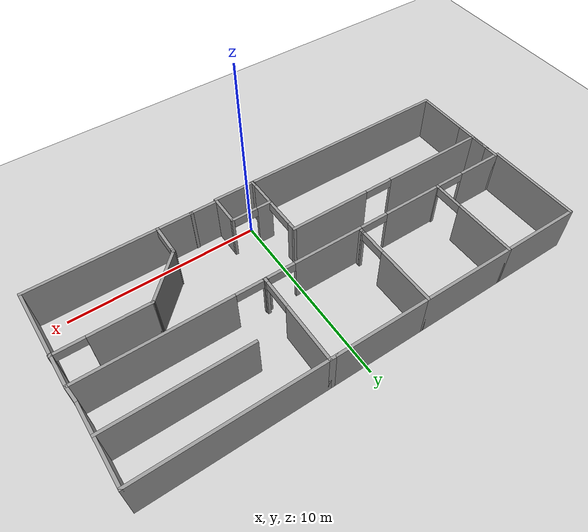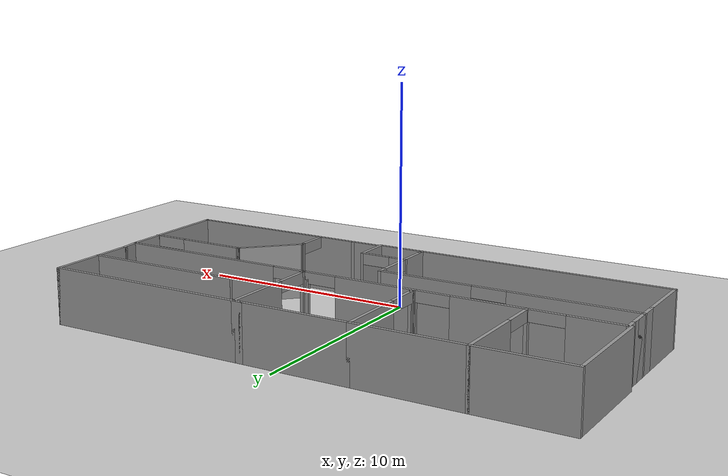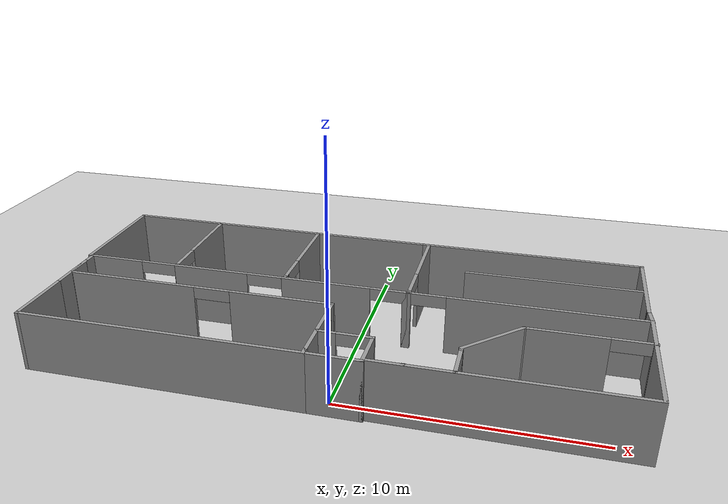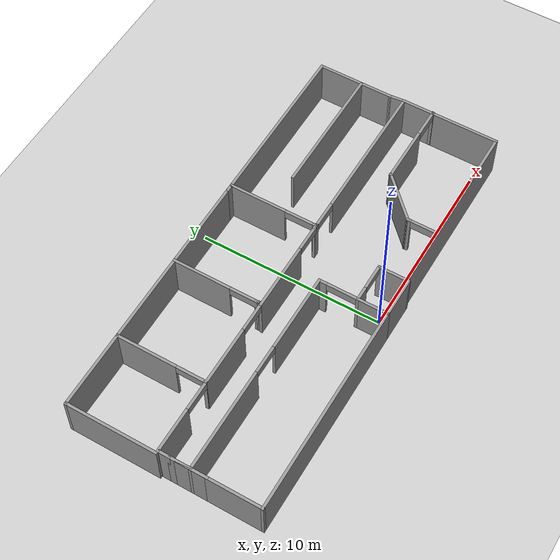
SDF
<sdf version="1.7">
 <world name="default">
  <light name="sun" type="directional">
   <pose>0 0 10 0 -0 0</pose>
   <diffuse>0.8 0.8 0.8 1</diffuse>
   <specular>0.2 0.2 0.2 1</specular>
   <attenuation>
    <range>1000</range>
    <constant>0.9</constant>
    <linear>0.01</linear>
    <quadratic>0.001</quadratic>
   </attenuation>
   <direction>-0.5 0.1 -0.9</direction>
   <spot><inner_angle>0</inner_angle><outer_angle>0</outer_angle><falloff>0</falloff></spot>
  </light>
  <model name="ground_plane">
   <static>1</static>
   <link name="link">
    <collision name="collision">
     <geometry><plane><normal>0 0 1</normal><size>100 100</size></plane></geometry>
     <surface><friction><ode><mu>100</mu><mu2>50</mu2></ode></friction></surface>
    </collision>
    <visual name="visual">
     <cast_shadows>0</cast_shadows>
     <geometry><plane><normal>0 0 1</normal><size>100 100</size></plane></geometry>
     <material>
      <script><uri>file://media/materials/scripts/gazebo.material</uri><name>Gazebo/Grey</name></script>
     </material>
    </visual>
   </link>
  </model>
  <gravity>0 0 -9.8</gravity>
  <magnetic_field>6e-06 2.3e-05 -4.2e-05</magnetic_field>
  <atmosphere type="adiabatic"/>
  <physics type="ode">
   <max_step_size>0.001</max_step_size>
   <real_time_factor>1</real_time_factor>
   <real_time_update_rate>1000</real_time_update_rate>
  </physics>
  <scene><ambient>0.4 0.4 0.4 1</ambient><background>0.7 0.7 0.7 1</background><shadows>1</shadows></scene>
  <audio><device>default</device></audio>
  <spherical_coordinates>
   <surface_model>EARTH_WGS84</surface_model>
   <latitude_deg>0</latitude_deg>
   <longitude_deg>0</longitude_deg>
   <elevation>0</elevation>
   <heading_deg>0</heading_deg>
  </spherical_coordinates>
  <model name="factory2">
   <pose>-0.500335 4.41886 0 0 -0 0</pose>
   <link name="Wall_11">
    <collision name="Wall_11_Collision">
     <geometry><box><size>0.37 0.15 2.5</size></box></geometry>
     <pose>0 0 1.25 0 -0 0</pose>
    </collision>
    <visual name="Wall_11_Visual">
     <pose>0 0 1.25 0 -0 0</pose>
     <geometry><box><size>0.37 0.15 2.5</size></box></geometry>
     <material>
      <script><uri>file://media/materials/scripts/gazebo.material</uri><name>Gazebo/Grey</name></script>
      <ambient>1 1 1 1</ambient>
     </material>
     <meta><layer>0</layer></meta>
    </visual>
    <pose>-0.202627 -5.025 0 0 -0 -1.5708</pose>
   </link>
   <link name="Wall_12">
    <collision name="Wall_12_Collision">
     <geometry><box><size>2.25 0.15 2.5</size></box></geometry>
     <pose>0 0 1.25 0 -0 0</pose>
    </collision>
    <visual name="Wall_12_Visual">
     <pose>0 0 1.25 0 -0 0</pose>
     <geometry><box><size>2.25 0.15 2.5</size></box></geometry>
     <material>
      <script><uri>file://media/materials/scripts/gazebo.material</uri><name>Gazebo/Grey</name></script>
      <ambient>1 1 1 1</ambient>
     </material>
     <meta><layer>0</layer></meta>
    </visual>
    <pose>0.847373 -5.135 0 0 -0 0</pose>
   </link>
   <link name="Wall_13">
    <collision name="Wall_13_Collision">
     <geometry><box><size>1.75 0.15 2.5</size></box></geometry>
     <pose>0 0 1.25 0 -0 0</pose>
    </collision>
    <visual name="Wall_13_Visual">
     <pose>0 0 1.25 0 -0 0</pose>
     <geometry><box><size>1.75 0.15 2.5</size></box></geometry>
     <material>
      <script><uri>file://media/materials/scripts/gazebo.material</uri><name>Gazebo/Grey</name></script>
      <ambient>1 1 1 1</ambient>
     </material>
     <meta><layer>0</layer></meta>
    </visual>
    <pose>1.89737 -4.335 0 0 -0 1.5708</pose>
   </link>
   <link name="Wall_14">
    <pose>0.847373 -3.535 0 0 -0 3.14159</pose>
    <visual name="Wall_14_Visual_0">
     <pose>-1.0775 0 1.25 0 -0 0</pose>
     <geometry><box><size>0.095 0.15 2.5</size></box></geometry>
     <material>
      <script><uri>file://media/materials/scripts/gazebo.material</uri><name>Gazebo/Grey</name></script>
      <ambient>1 1 1 1</ambient>
     </material>
     <meta><layer>0</layer></meta>
    </visual>
    <collision name="Wall_14_Collision_0">
     <geometry><box><size>0.095 0.15 2.5</size></box></geometry>
     <pose>-1.0775 0 1.25 0 -0 0</pose>
    </collision>
    <visual name="Wall_14_Visual_1">
     <pose>0.7175 0 1.25 0 -0 0</pose>
     <geometry><box><size>0.815 0.15 2.5</size></box></geometry>
     <material>
      <script><uri>file://media/materials/scripts/gazebo.material</uri><name>Gazebo/Grey</name></script>
      <ambient>1 1 1 1</ambient>
     </material>
     <meta><layer>0</layer></meta>
    </visual>
    <collision name="Wall_14_Collision_1">
     <geometry><box><size>0.815 0.15 2.5</size></box></geometry>
     <pose>0.7175 0 1.25 0 -0 0</pose>
    </collision>
    <visual name="Wall_14_Visual_2">
     <pose>-0.36 0 2.25 0 -0 0</pose>
     <geometry><box><size>1.34 0.15 0.5</size></box></geometry>
     <material>
      <script><uri>file://media/materials/scripts/gazebo.material</uri><name>Gazebo/Grey</name></script>
      <ambient>1 1 1 1</ambient>
     </material>
     <meta><layer>0</layer></meta>
    </visual>
    <collision name="Wall_14_Collision_2">
     <geometry><box><size>1.34 0.15 0.5</size></box></geometry>
     <pose>-0.36 0 2.25 0 -0 0</pose>
    </collision>
   </link>
   <link name="Wall_15">
    <collision name="Wall_15_Collision">
     <geometry><box><size>1.75 0.15 2.5</size></box></geometry>
     <pose>0 0 1.25 0 -0 0</pose>
    </collision>
    <visual name="Wall_15_Visual">
     <pose>0 0 1.25 0 -0 0</pose>
     <geometry><box><size>1.75 0.15 2.5</size></box></geometry>
     <material>
      <script><uri>file://media/materials/scripts/gazebo.material</uri><name>Gazebo/Grey</name></script>
      <ambient>1 1 1 1</ambient>
     </material>
     <meta><layer>0</layer></meta>
    </visual>
    <pose>-0.202627 -4.335 0 0 -0 -1.5708</pose>
   </link>
   <link name="Wall_18">
    <collision name="Wall_18_Collision">
     <geometry><box><size>11.5 0.15 2.5</size></box></geometry>
     <pose>0 0 1.25 0 -0 0</pose>
    </collision>
    <visual name="Wall_18_Visual">
     <pose>0 0 1.25 0 -0 0</pose>
     <geometry><box><size>11.5 0.15 2.5</size></box></geometry>
     <material>
      <script><uri>file://media/materials/scripts/gazebo.material</uri><name>Gazebo/Grey</name></script>
      <ambient>1 1 1 1</ambient>
     </material>
     <meta><layer>0</layer></meta>
    </visual>
    <pose>-5.87763 -5.135 0 0 -0 3.14159</pose>
   </link>
   <link name="Wall_19">
    <collision name="Wall_19_Collision">
     <geometry><box><size>3 0.15 2.5</size></box></geometry>
     <pose>0 0 1.25 0 -0 0</pose>
    </collision>
    <visual name="Wall_19_Visual">
     <pose>0 0 1.25 0 -0 0</pose>
     <geometry><box><size>3 0.15 2.5</size></box></geometry>
     <material>
      <script><uri>file://media/materials/scripts/gazebo.material</uri><name>Gazebo/Grey</name></script>
      <ambient>1 1 1 1</ambient>
     </material>
     <meta><layer>0</layer></meta>
    </visual>
    <pose>-11.5526 -3.71 0 0 -0 1.5708</pose>
   </link>
   <link name="Wall_21">
    <collision name="Wall_21_Collision">
     <geometry><box><size>1.75 0.15 2.5</size></box></geometry>
     <pose>0 0 1.25 0 -0 0</pose>
    </collision>
    <visual name="Wall_21_Visual">
     <pose>0 0 1.25 0 -0 0</pose>
     <geometry><box><size>1.75 0.15 2.5</size></box></geometry>
     <material>
      <script><uri>file://media/materials/scripts/gazebo.material</uri><name>Gazebo/Grey</name></script>
      <ambient>1 1 1 1</ambient>
     </material>
     <meta><layer>0</layer></meta>
    </visual>
    <pose>-11.5526 -1.485 0 0 -0 1.5708</pose>
   </link>
   <link name="Wall_28">
    <pose>-0.202627 -2.485 0 0 -0 1.5708</pose>
    <visual name="Wall_28_Visual_0">
     <pose>-1.05 0 1.25 0 -0 0</pose>
     <geometry><box><size>0.15 0.15 2.5</size></box></geometry>
     <material>
      <script><uri>file://media/materials/scripts/gazebo.material</uri><name>Gazebo/Grey</name></script>
      <ambient>1 1 1 1</ambient>
     </material>
     <meta><layer>0</layer></meta>
    </visual>
    <collision name="Wall_28_Collision_0">
     <geometry><box><size>0.15 0.15 2.5</size></box></geometry>
     <pose>-1.05 0 1.25 0 -0 0</pose>
    </collision>
    <visual name="Wall_28_Visual_1">
     <pose>0.875 0 1.25 0 -0 0</pose>
     <geometry><box><size>0.5 0.15 2.5</size></box></geometry>
     <material>
      <script><uri>file://media/materials/scripts/gazebo.material</uri><name>Gazebo/Grey</name></script>
      <ambient>1 1 1 1</ambient>
     </material>
     <meta><layer>0</layer></meta>
    </visual>
    <collision name="Wall_28_Collision_1">
     <geometry><box><size>0.5 0.15 2.5</size></box></geometry>
     <pose>0.875 0 1.25 0 -0 0</pose>
    </collision>
    <visual name="Wall_28_Visual_2">
     <pose>-0.175 0 2.25 0 -0 0</pose>
     <geometry><box><size>1.6 0.15 0.5</size></box></geometry>
     <material>
      <script><uri>file://media/materials/scripts/gazebo.material</uri><name>Gazebo/Grey</name></script>
      <ambient>1 1 1 1</ambient>
     </material>
     <meta><layer>0</layer></meta>
    </visual>
    <collision name="Wall_28_Collision_2">
     <geometry><box><size>1.6 0.15 0.5</size></box></geometry>
     <pose>-0.175 0 2.25 0 -0 0</pose>
    </collision>
   </link>
   <link name="Wall_29">
    <pose>-5.87763 -1.435 0 0 -0 3.14159</pose>
    <visual name="Wall_29_Visual_0">
     <pose>-3.59 0 1.25 0 -0 0</pose>
     <geometry><box><size>4.32 0.15 2.5</size></box></geometry>
     <material>
      <script><uri>file://media/materials/scripts/gazebo.material</uri><name>Gazebo/Grey</name></script>
      <ambient>1 1 1 1</ambient>
     </material>
     <meta><layer>0</layer></meta>
    </visual>
    <collision name="Wall_29_Collision_0">
     <geometry><box><size>4.32 0.15 2.5</size></box></geometry>
     <pose>-3.59 0 1.25 0 -0 0</pose>
    </collision>
    <visual name="Wall_29_Visual_1">
     <pose>2.925 0 1.25 0 -0 0</pose>
     <geometry><box><size>5.65 0.15 2.5</size></box></geometry>
     <material>
      <script><uri>file://media/materials/scripts/gazebo.material</uri><name>Gazebo/Grey</name></script>
      <ambient>1 1 1 1</ambient>
     </material>
     <meta><layer>0</layer></meta>
    </visual>
    <collision name="Wall_29_Collision_1">
     <geometry><box><size>5.65 0.15 2.5</size></box></geometry>
     <pose>2.925 0 1.25 0 -0 0</pose>
    </collision>
    <visual name="Wall_29_Visual_2">
     <pose>-0.665 0 2.25 0 -0 0</pose>
     <geometry><box><size>1.53 0.15 0.5</size></box></geometry>
     <material>
      <script><uri>file://media/materials/scripts/gazebo.material</uri><name>Gazebo/Grey</name></script>
      <ambient>1 1 1 1</ambient>
     </material>
     <meta><layer>0</layer></meta>
    </visual>
    <collision name="Wall_29_Collision_2">
     <geometry><box><size>1.53 0.15 0.5</size></box></geometry>
     <pose>-0.665 0 2.25 0 -0 0</pose>
    </collision>
   </link>
   <link name="Wall_30">
    <collision name="Wall_30_Collision">
     <geometry><box><size>0.16 0.15 2.5</size></box></geometry>
     <pose>0 0 1.25 0 -0 0</pose>
    </collision>
    <visual name="Wall_30_Visual">
     <pose>0 0 1.25 0 -0 0</pose>
     <geometry><box><size>0.16 0.15 2.5</size></box></geometry>
     <material>
      <script><uri>file://media/materials/scripts/gazebo.material</uri><name>Gazebo/Grey</name></script>
      <ambient>1 1 1 1</ambient>
     </material>
     <meta><layer>0</layer></meta>
    </visual>
    <pose>-11.5476 -1.435 0 0 -0 0</pose>
   </link>
   <link name="Wall_34">
    <collision name="Wall_34_Collision">
     <geometry><box><size>3.75 0.15 2.5</size></box></geometry>
     <pose>0 0 1.25 0 -0 0</pose>
    </collision>
    <visual name="Wall_34_Visual">
     <pose>0 0 1.25 0 -0 0</pose>
     <geometry><box><size>3.75 0.15 2.5</size></box></geometry>
     <material>
      <script><uri>file://media/materials/scripts/gazebo.material</uri><name>Gazebo/Grey</name></script>
      <ambient>1 1 1 1</ambient>
     </material>
     <meta><layer>0</layer></meta>
    </visual>
    <pose>11.6474 -3.235 0 0 -0 -1.5708</pose>
   </link>
   <link name="Wall_35">
    <collision name="Wall_35_Collision">
     <geometry><box><size>9.75 0.15 2.5</size></box></geometry>
     <pose>0 0 1.25 0 -0 0</pose>
    </collision>
    <visual name="Wall_35_Visual">
     <pose>0 0 1.25 0 -0 0</pose>
     <geometry><box><size>9.75 0.15 2.5</size></box></geometry>
     <material>
      <script><uri>file://media/materials/scripts/gazebo.material</uri><name>Gazebo/Grey</name></script>
      <ambient>1 1 1 1</ambient>
     </material>
     <meta><layer>0</layer></meta>
    </visual>
    <pose>6.84737 -5.035 0 0 -0 3.14159</pose>
   </link>
   <link name="Wall_37">
    <collision name="Wall_37_Collision">
     <geometry><box><size>1.25 0.15 2.5</size></box></geometry>
     <pose>0 0 1.25 0 -0 0</pose>
    </collision>
    <visual name="Wall_37_Visual">
     <pose>0 0 1.25 0 -0 0</pose>
     <geometry><box><size>1.25 0.15 2.5</size></box></geometry>
     <material>
      <script><uri>file://media/materials/scripts/gazebo.material</uri><name>Gazebo/Grey</name></script>
      <ambient>1 1 1 1</ambient>
     </material>
     <meta><layer>0</layer></meta>
    </visual>
    <pose>-11.5526 -0.885 0 0 -0 1.5708</pose>
   </link>
   <link name="Wall_42">
    <collision name="Wall_42_Collision">
     <geometry><box><size>0.75 0.15 2.5</size></box></geometry>
     <pose>0 0 1.25 0 -0 0</pose>
    </collision>
    <visual name="Wall_42_Visual">
     <pose>0 0 1.25 0 -0 0</pose>
     <geometry><box><size>0.75 0.15 2.5</size></box></geometry>
     <material>
      <script><uri>file://media/materials/scripts/gazebo.material</uri><name>Gazebo/Grey</name></script>
      <ambient>1 1 1 1</ambient>
     </material>
     <meta><layer>0</layer></meta>
    </visual>
    <pose>-11.5526 -0.035 0 0 -0 1.5708</pose>
   </link>
   <link name="Wall_43">
    <pose>-4.62763 0.265 0 0 -0 0</pose>
    <visual name="Wall_43_Visual_0">
     <pose>-5.77 0 1.25 0 -0 0</pose>
     <geometry><box><size>2.46 0.15 2.5</size></box></geometry>
     <material>
      <script><uri>file://media/materials/scripts/gazebo.material</uri><name>Gazebo/Grey</name></script>
      <ambient>1 1 1 1</ambient>
     </material>
     <meta><layer>0</layer></meta>
    </visual>
    <collision name="Wall_43_Collision_0">
     <geometry><box><size>2.46 0.15 2.5</size></box></geometry>
     <pose>-5.77 0 1.25 0 -0 0</pose>
    </collision>
    <visual name="Wall_43_Visual_1">
     <pose>-1.37 0 1.25 0 -0 0</pose>
     <geometry><box><size>3.28 0.15 2.5</size></box></geometry>
     <material>
      <script><uri>file://media/materials/scripts/gazebo.material</uri><name>Gazebo/Grey</name></script>
      <ambient>1 1 1 1</ambient>
     </material>
     <meta><layer>0</layer></meta>
    </visual>
    <collision name="Wall_43_Collision_1">
     <geometry><box><size>3.28 0.15 2.5</size></box></geometry>
     <pose>-1.37 0 1.25 0 -0 0</pose>
    </collision>
    <visual name="Wall_43_Visual_2">
     <pose>3.655 0 1.25 0 -0 0</pose>
     <geometry><box><size>3.75 0.15 2.5</size></box></geometry>
     <material>
      <script><uri>file://media/materials/scripts/gazebo.material</uri><name>Gazebo/Grey</name></script>
      <ambient>1 1 1 1</ambient>
     </material>
     <meta><layer>0</layer></meta>
    </visual>
    <collision name="Wall_43_Collision_2">
     <geometry><box><size>3.75 0.15 2.5</size></box></geometry>
     <pose>3.655 0 1.25 0 -0 0</pose>
    </collision>
    <visual name="Wall_43_Visual_3">
     <pose>-3.775 0 2.25 0 -0 0</pose>
     <geometry><box><size>1.53 0.15 0.5</size></box></geometry>
     <material>
      <script><uri>file://media/materials/scripts/gazebo.material</uri><name>Gazebo/Grey</name></script>
      <ambient>1 1 1 1</ambient>
     </material>
     <meta><layer>0</layer></meta>
    </visual>
    <collision name="Wall_43_Collision_3">
     <geometry><box><size>1.53 0.15 0.5</size></box></geometry>
     <pose>-3.775 0 2.25 0 -0 0</pose>
    </collision>
    <visual name="Wall_43_Visual_4">
     <pose>1.025 0 2.25 0 -0 0</pose>
     <geometry><box><size>1.51 0.15 0.5</size></box></geometry>
     <material>
      <script><uri>file://media/materials/scripts/gazebo.material</uri><name>Gazebo/Grey</name></script>
      <ambient>1 1 1 1</ambient>
     </material>
     <meta><layer>0</layer></meta>
    </visual>
    <collision name="Wall_43_Collision_4">
     <geometry><box><size>1.51 0.15 0.5</size></box></geometry>
     <pose>1.025 0 2.25 0 -0 0</pose>
    </collision>
    <visual name="Wall_43_Visual_5">
     <pose>6.265 0 2.25 0 -0 0</pose>
     <geometry><box><size>1.47 0.15 0.5</size></box></geometry>
     <material>
      <script><uri>file://media/materials/scripts/gazebo.material</uri><name>Gazebo/Grey</name></script>
      <ambient>1 1 1 1</ambient>
     </material>
     <meta><layer>0</layer></meta>
    </visual>
    <collision name="Wall_43_Collision_5">
     <geometry><box><size>1.47 0.15 0.5</size></box></geometry>
     <pose>6.265 0 2.25 0 -0 0</pose>
    </collision>
   </link>
   <link name="Wall_45">
    <collision name="Wall_45_Collision">
     <geometry><box><size>0.21 0.15 2.5</size></box></geometry>
     <pose>0 0 1.25 0 -0 0</pose>
    </collision>
    <visual name="Wall_45_Visual">
     <pose>0 0 1.25 0 -0 0</pose>
     <geometry><box><size>0.21 0.15 2.5</size></box></geometry>
     <material>
      <script><uri>file://media/materials/scripts/gazebo.material</uri><name>Gazebo/Grey</name></script>
      <ambient>1 1 1 1</ambient>
     </material>
     <meta><layer>0</layer></meta>
    </visual>
    <pose>2.32737 0.265 0 0 -0 0</pose>
   </link>
   <link name="Wall_48">
    <pose>-7.58263 2.71 0 0 -0 1.5708</pose>
    <visual name="Wall_48_Visual_0">
     <pose>-2.4075 0 1.25 0 -0 0</pose>
     <geometry><box><size>0.185 0.15 2.5</size></box></geometry>
     <material>
      <script><uri>file://media/materials/scripts/gazebo.material</uri><name>Gazebo/Grey</name></script>
      <ambient>1 1 1 1</ambient>
     </material>
     <meta><layer>0</layer></meta>
    </visual>
    <collision name="Wall_48_Collision_0">
     <geometry><box><size>0.185 0.15 2.5</size></box></geometry>
     <pose>-2.4075 0 1.25 0 -0 0</pose>
    </collision>
    <visual name="Wall_48_Visual_1">
     <pose>0.8325 0 1.25 0 -0 0</pose>
     <geometry><box><size>3.335 0.15 2.5</size></box></geometry>
     <material>
      <script><uri>file://media/materials/scripts/gazebo.material</uri><name>Gazebo/Grey</name></script>
      <ambient>1 1 1 1</ambient>
     </material>
     <meta><layer>0</layer></meta>
    </visual>
    <collision name="Wall_48_Collision_1">
     <geometry><box><size>3.335 0.15 2.5</size></box></geometry>
     <pose>0.8325 0 1.25 0 -0 0</pose>
    </collision>
    <visual name="Wall_48_Visual_2">
     <pose>-1.575 0 2.25 0 -0 0</pose>
     <geometry><box><size>1.48 0.15 0.5</size></box></geometry>
     <material>
      <script><uri>file://media/materials/scripts/gazebo.material</uri><name>Gazebo/Grey</name></script>
      <ambient>1 1 1 1</ambient>
     </material>
     <meta><layer>0</layer></meta>
    </visual>
    <collision name="Wall_48_Collision_2">
     <geometry><box><size>1.48 0.15 0.5</size></box></geometry>
     <pose>-1.575 0 2.25 0 -0 0</pose>
    </collision>
   </link>
   <link name="Wall_49">
    <collision name="Wall_49_Collision">
     <geometry><box><size>4.25 0.15 2.5</size></box></geometry>
     <pose>0 0 1.25 0 -0 0</pose>
    </collision>
    <visual name="Wall_49_Visual">
     <pose>0 0 1.25 0 -0 0</pose>
     <geometry><box><size>4.25 0.15 2.5</size></box></geometry>
     <material>
      <script><uri>file://media/materials/scripts/gazebo.material</uri><name>Gazebo/Grey</name></script>
      <ambient>1 1 1 1</ambient>
     </material>
     <meta><layer>0</layer></meta>
    </visual>
    <pose>-9.63263 5.135 0 0 -0 3.14159</pose>
   </link>
   <link name="Wall_50">
    <collision name="Wall_50_Collision">
     <geometry><box><size>5 0.15 2.5</size></box></geometry>
     <pose>0 0 1.25 0 -0 0</pose>
    </collision>
    <visual name="Wall_50_Visual">
     <pose>0 0 1.25 0 -0 0</pose>
     <geometry><box><size>5 0.15 2.5</size></box></geometry>
     <material>
      <script><uri>file://media/materials/scripts/gazebo.material</uri><name>Gazebo/Grey</name></script>
      <ambient>1 1 1 1</ambient>
     </material>
     <meta><layer>0</layer></meta>
    </visual>
    <pose>-11.6826 2.71 0 0 -0 -1.5708</pose>
   </link>
   <link name="Wall_53">
    <collision name="Wall_53_Collision">
     <geometry><box><size>5 0.15 2.5</size></box></geometry>
     <pose>0 0 1.25 0 -0 0</pose>
    </collision>
    <visual name="Wall_53_Visual">
     <pose>0 0 1.25 0 -0 0</pose>
     <geometry><box><size>5 0.15 2.5</size></box></geometry>
     <material>
      <script><uri>file://media/materials/scripts/gazebo.material</uri><name>Gazebo/Grey</name></script>
      <ambient>1 1 1 1</ambient>
     </material>
     <meta><layer>0</layer></meta>
    </visual>
    <pose>-5.15763 5.135 0 0 -0 0</pose>
   </link>
   <link name="Wall_54">
    <pose>-2.73263 2.835 0 0 -0 -1.5708</pose>
    <visual name="Wall_54_Visual_0">
     <pose>-0.765 0 1.25 0 -0 0</pose>
     <geometry><box><size>3.22 0.15 2.5</size></box></geometry>
     <material>
      <script><uri>file://media/materials/scripts/gazebo.material</uri><name>Gazebo/Grey</name></script>
      <ambient>1 1 1 1</ambient>
     </material>
     <meta><layer>0</layer></meta>
    </visual>
    <collision name="Wall_54_Collision_0">
     <geometry><box><size>3.22 0.15 2.5</size></box></geometry>
     <pose>-0.765 0 1.25 0 -0 0</pose>
    </collision>
    <visual name="Wall_54_Visual_1">
     <pose>1.61 0 2.25 0 -0 0</pose>
     <geometry><box><size>1.53 0.15 0.5</size></box></geometry>
     <material>
      <script><uri>file://media/materials/scripts/gazebo.material</uri><name>Gazebo/Grey</name></script>
      <ambient>1 1 1 1</ambient>
     </material>
     <meta><layer>0</layer></meta>
    </visual>
    <collision name="Wall_54_Collision_1">
     <geometry><box><size>1.53 0.15 0.5</size></box></geometry>
     <pose>1.61 0 2.25 0 -0 0</pose>
    </collision>
   </link>
   <link name="Wall_56">
    <collision name="Wall_56_Collision">
     <geometry><box><size>0.25 0.15 2.5</size></box></geometry>
     <pose>0 0 1.25 0 -0 0</pose>
    </collision>
    <visual name="Wall_56_Visual">
     <pose>0 0 1.25 0 -0 0</pose>
     <geometry><box><size>0.25 0.15 2.5</size></box></geometry>
     <material>
      <script><uri>file://media/materials/scripts/gazebo.material</uri><name>Gazebo/Grey</name></script>
      <ambient>1 1 1 1</ambient>
     </material>
     <meta><layer>0</layer></meta>
    </visual>
    <pose>-2.73263 0.485 0 0 -0 -1.5708</pose>
   </link>
   <link name="Wall_57">
    <collision name="Wall_57_Collision">
     <geometry><box><size>0.16 0.15 2.5</size></box></geometry>
     <pose>0 0 1.25 0 -0 0</pose>
    </collision>
    <visual name="Wall_57_Visual">
     <pose>0 0 1.25 0 -0 0</pose>
     <geometry><box><size>0.16 0.15 2.5</size></box></geometry>
     <material>
      <script><uri>file://media/materials/scripts/gazebo.material</uri><name>Gazebo/Grey</name></script>
      <ambient>1 1 1 1</ambient>
     </material>
     <meta><layer>0</layer></meta>
    </visual>
    <pose>-2.72763 0.435 0 0 -0 0</pose>
   </link>
   <link name="Wall_59">
    <pose>6.97237 0.265 0 0 -0 0</pose>
    <visual name="Wall_59_Visual_0">
     <pose>-4.575 0 1.25 0 -0 0</pose>
     <geometry><box><size>0.35 0.15 2.5</size></box></geometry>
     <material>
      <script><uri>file://media/materials/scripts/gazebo.material</uri><name>Gazebo/Grey</name></script>
      <ambient>1 1 1 1</ambient>
     </material>
     <meta><layer>0</layer></meta>
    </visual>
    <collision name="Wall_59_Collision_0">
     <geometry><box><size>0.35 0.15 2.5</size></box></geometry>
     <pose>-4.575 0 1.25 0 -0 0</pose>
    </collision>
    <visual name="Wall_59_Visual_1">
     <pose>0.88 0 1.25 0 -0 0</pose>
     <geometry><box><size>7.74 0.15 2.5</size></box></geometry>
     <material>
      <script><uri>file://media/materials/scripts/gazebo.material</uri><name>Gazebo/Grey</name></script>
      <ambient>1 1 1 1</ambient>
     </material>
     <meta><layer>0</layer></meta>
    </visual>
    <collision name="Wall_59_Collision_1">
     <geometry><box><size>7.74 0.15 2.5</size></box></geometry>
     <pose>0.88 0 1.25 0 -0 0</pose>
    </collision>
    <visual name="Wall_59_Visual_2">
     <pose>-3.695 0 2.25 0 -0 0</pose>
     <geometry><box><size>1.41 0.15 0.5</size></box></geometry>
     <material>
      <script><uri>file://media/materials/scripts/gazebo.material</uri><name>Gazebo/Grey</name></script>
      <ambient>1 1 1 1</ambient>
     </material>
     <meta><layer>0</layer></meta>
    </visual>
    <collision name="Wall_59_Collision_2">
     <geometry><box><size>1.41 0.15 0.5</size></box></geometry>
     <pose>-3.695 0 2.25 0 -0 0</pose>
    </collision>
   </link>
   <link name="Wall_60">
    <collision name="Wall_60_Collision">
     <geometry><box><size>1.85 0.15 2.5</size></box></geometry>
     <pose>0 0 1.25 0 -0 0</pose>
    </collision>
    <visual name="Wall_60_Visual">
     <pose>0 0 1.25 0 -0 0</pose>
     <geometry><box><size>1.85 0.15 2.5</size></box></geometry>
     <material>
      <script><uri>file://media/materials/scripts/gazebo.material</uri><name>Gazebo/Grey</name></script>
      <ambient>1 1 1 1</ambient>
     </material>
     <meta><layer>0</layer></meta>
    </visual>
    <pose>11.6474 -0.585 0 0 -0 -1.5708</pose>
   </link>
   <link name="Wall_61">
    <collision name="Wall_61_Collision">
     <geometry><box><size>0.16 0.15 2.5</size></box></geometry>
     <pose>0 0 1.25 0 -0 0</pose>
    </collision>
    <visual name="Wall_61_Visual">
     <pose>0 0 1.25 0 -0 0</pose>
     <geometry><box><size>0.16 0.15 2.5</size></box></geometry>
     <material>
      <script><uri>file://media/materials/scripts/gazebo.material</uri><name>Gazebo/Grey</name></script>
      <ambient>1 1 1 1</ambient>
     </material>
     <meta><layer>0</layer></meta>
    </visual>
    <pose>11.6524 -1.435 0 0 -0 0</pose>
   </link>
   <link name="Wall_63">
    <collision name="Wall_63_Collision">
     <geometry><box><size>5 0.15 2.5</size></box></geometry>
     <pose>0 0 1.25 0 -0 0</pose>
    </collision>
    <visual name="Wall_63_Visual">
     <pose>0 0 1.25 0 -0 0</pose>
     <geometry><box><size>5 0.15 2.5</size></box></geometry>
     <material>
      <script><uri>file://media/materials/scripts/gazebo.material</uri><name>Gazebo/Grey</name></script>
      <ambient>1 1 1 1</ambient>
     </material>
     <meta><layer>0</layer></meta>
    </visual>
    <pose>-0.307627 5.135 0 0 -0 0</pose>
   </link>
   <link name="Wall_64">
    <collision name="Wall_64_Collision">
     <geometry><box><size>0.5 0.15 2.5</size></box></geometry>
     <pose>0 0 1.25 0 -0 0</pose>
    </collision>
    <visual name="Wall_64_Visual">
     <pose>0 0 1.25 0 -0 0</pose>
     <geometry><box><size>0.5 0.15 2.5</size></box></geometry>
     <material>
      <script><uri>file://media/materials/scripts/gazebo.material</uri><name>Gazebo/Grey</name></script>
      <ambient>1 1 1 1</ambient>
     </material>
     <meta><layer>0</layer></meta>
    </visual>
    <pose>2.29237 5.135 0 0 -0 0</pose>
   </link>
   <link name="Wall_65">
    <pose>2.46737 2.71 0 0 -0 -1.5708</pose>
    <visual name="Wall_65_Visual_0">
     <pose>-0.9 0 1.25 0 -0 0</pose>
     <geometry><box><size>3.2 0.15 2.5</size></box></geometry>
     <material>
      <script><uri>file://media/materials/scripts/gazebo.material</uri><name>Gazebo/Grey</name></script>
      <ambient>1 1 1 1</ambient>
     </material>
     <meta><layer>0</layer></meta>
    </visual>
    <collision name="Wall_65_Collision_0">
     <geometry><box><size>3.2 0.15 2.5</size></box></geometry>
     <pose>-0.9 0 1.25 0 -0 0</pose>
    </collision>
    <visual name="Wall_65_Visual_1">
     <pose>2.375 0 1.25 0 -0 0</pose>
     <geometry><box><size>0.25 0.15 2.5</size></box></geometry>
     <material>
      <script><uri>file://media/materials/scripts/gazebo.material</uri><name>Gazebo/Grey</name></script>
      <ambient>1 1 1 1</ambient>
     </material>
     <meta><layer>0</layer></meta>
    </visual>
    <collision name="Wall_65_Collision_1">
     <geometry><box><size>0.25 0.15 2.5</size></box></geometry>
     <pose>2.375 0 1.25 0 -0 0</pose>
    </collision>
    <visual name="Wall_65_Visual_2">
     <pose>1.475 0 2.25 0 -0 0</pose>
     <geometry><box><size>1.55 0.15 0.5</size></box></geometry>
     <material>
      <script><uri>file://media/materials/scripts/gazebo.material</uri><name>Gazebo/Grey</name></script>
      <ambient>1 1 1 1</ambient>
     </material>
     <meta><layer>0</layer></meta>
    </visual>
    <collision name="Wall_65_Collision_2">
     <geometry><box><size>1.55 0.15 0.5</size></box></geometry>
     <pose>1.475 0 2.25 0 -0 0</pose>
    </collision>
   </link>
   <link name="Wall_67">
    <collision name="Wall_67_Collision">
     <geometry><box><size>9.25 0.15 2.5</size></box></geometry>
     <pose>0 0 1.25 0 -0 0</pose>
    </collision>
    <visual name="Wall_67_Visual">
     <pose>0 0 1.25 0 -0 0</pose>
     <geometry><box><size>9.25 0.15 2.5</size></box></geometry>
     <material>
      <script><uri>file://media/materials/scripts/gazebo.material</uri><name>Gazebo/Grey</name></script>
      <ambient>1 1 1 1</ambient>
     </material>
     <meta><layer>0</layer></meta>
    </visual>
    <pose>7.01737 5.135 0 0 -0 0</pose>
   </link>
   <link name="Wall_68">
    <collision name="Wall_68_Collision">
     <geometry><box><size>4.25 0.15 2.5</size></box></geometry>
     <pose>0 0 1.25 0 -0 0</pose>
    </collision>
    <visual name="Wall_68_Visual">
     <pose>0 0 1.25 0 -0 0</pose>
     <geometry><box><size>4.25 0.15 2.5</size></box></geometry>
     <material>
      <script><uri>file://media/materials/scripts/gazebo.material</uri><name>Gazebo/Grey</name></script>
      <ambient>1 1 1 1</ambient>
     </material>
     <meta><layer>0</layer></meta>
    </visual>
    <pose>11.5674 3.085 0 0 -0 -1.5708</pose>
   </link>
   <link name="Wall_70">
    <collision name="Wall_70_Collision">
     <geometry><box><size>0.924145 0.15 2.5</size></box></geometry>
     <pose>0 0 1.25 0 -0 0</pose>
    </collision>
    <visual name="Wall_70_Visual">
     <pose>0 0 1.25 0 -0 0</pose>
     <geometry><box><size>0.924145 0.15 2.5</size></box></geometry>
     <material>
      <script><uri>file://media/materials/scripts/gazebo.material</uri><name>Gazebo/Grey</name></script>
      <ambient>1 1 1 1</ambient>
     </material>
     <meta><layer>0</layer></meta>
    </visual>
    <pose>11.6074 0.65 0 0 -0 -1.46727</pose>
   </link>
   <link name="Wall_76">
    <collision name="Wall_76_Collision">
     <geometry><box><size>7.25 0.15 2.5</size></box></geometry>
     <pose>0 0 1.25 0 -0 0</pose>
    </collision>
    <visual name="Wall_76_Visual">
     <pose>0 0 1.25 0 -0 0</pose>
     <geometry><box><size>7.25 0.15 2.5</size></box></geometry>
     <material>
      <script><uri>file://media/materials/scripts/gazebo.material</uri><name>Gazebo/Grey</name></script>
      <ambient>1 1 1 1</ambient>
     </material>
     <meta><layer>0</layer></meta>
    </visual>
    <pose>8.01737 2.745 0 0 -0 0</pose>
   </link>
   <link name="Wall_78">
    <collision name="Wall_78_Collision">
     <geometry><box><size>0.16 0.15 2.5</size></box></geometry>
     <pose>0 0 1.25 0 -0 0</pose>
    </collision>
    <visual name="Wall_78_Visual">
     <pose>0 0 1.25 0 -0 0</pose>
     <geometry><box><size>0.16 0.15 2.5</size></box></geometry>
     <material>
      <script><uri>file://media/materials/scripts/gazebo.material</uri><name>Gazebo/Grey</name></script>
      <ambient>1 1 1 1</ambient>
     </material>
     <meta><layer>0</layer></meta>
    </visual>
    <pose>3.28237 -5.015 0 0 -0 0</pose>
   </link>
   <link name="Wall_80">
    <pose>5.05737 -4.225 0 0 -0 1.5708</pose>
    <visual name="Wall_80_Visual_0">
     <pose>-0.805 0 1.25 0 -0 0</pose>
     <geometry><box><size>0.14 0.15 2.5</size></box></geometry>
     <material>
      <script><uri>file://media/materials/scripts/gazebo.material</uri><name>Gazebo/Grey</name></script>
      <ambient>1 1 1 1</ambient>
     </material>
     <meta><layer>0</layer></meta>
    </visual>
    <collision name="Wall_80_Collision_0">
     <geometry><box><size>0.14 0.15 2.5</size></box></geometry>
     <pose>-0.805 0 1.25 0 -0 0</pose>
    </collision>
    <visual name="Wall_80_Visual_1">
     <pose>0.745 0 1.25 0 -0 0</pose>
     <geometry><box><size>0.26 0.15 2.5</size></box></geometry>
     <material>
      <script><uri>file://media/materials/scripts/gazebo.material</uri><name>Gazebo/Grey</name></script>
      <ambient>1 1 1 1</ambient>
     </material>
     <meta><layer>0</layer></meta>
    </visual>
    <collision name="Wall_80_Collision_1">
     <geometry><box><size>0.26 0.15 2.5</size></box></geometry>
     <pose>0.745 0 1.25 0 -0 0</pose>
    </collision>
    <visual name="Wall_80_Visual_2">
     <pose>-0.06 0 2.25 0 -0 0</pose>
     <geometry><box><size>1.35 0.15 0.5</size></box></geometry>
     <material>
      <script><uri>file://media/materials/scripts/gazebo.material</uri><name>Gazebo/Grey</name></script>
      <ambient>1 1 1 1</ambient>
     </material>
     <meta><layer>0</layer></meta>
    </visual>
    <collision name="Wall_80_Collision_2">
     <geometry><box><size>1.35 0.15 0.5</size></box></geometry>
     <pose>-0.06 0 2.25 0 -0 0</pose>
    </collision>
   </link>
   <link name="Wall_81">
    <collision name="Wall_81_Collision">
     <geometry><box><size>3 0.15 2.5</size></box></geometry>
     <pose>0 0 1.25 0 -0 0</pose>
    </collision>
    <visual name="Wall_81_Visual">
     <pose>0 0 1.25 0 -0 0</pose>
     <geometry><box><size>3 0.15 2.5</size></box></geometry>
     <material>
      <script><uri>file://media/materials/scripts/gazebo.material</uri><name>Gazebo/Grey</name></script>
      <ambient>1 1 1 1</ambient>
     </material>
     <meta><layer>0</layer></meta>
    </visual>
    <pose>6.065 -2.41737 0 0 -0 0.785398</pose>
   </link>
   <link name="Wall_82">
    <collision name="Wall_82_Collision">
     <geometry><box><size>0.16 0.15 2.5</size></box></geometry>
     <pose>0 0 1.25 0 -0 0</pose>
    </collision>
    <visual name="Wall_82_Visual">
     <pose>0 0 1.25 0 -0 0</pose>
     <geometry><box><size>0.16 0.15 2.5</size></box></geometry>
     <material>
      <script><uri>file://media/materials/scripts/gazebo.material</uri><name>Gazebo/Grey</name></script>
      <ambient>1 1 1 1</ambient>
     </material>
     <meta><layer>0</layer></meta>
    </visual>
    <pose>7.07763 -1.40975 0 0 -0 0</pose>
   </link>
   <link name="Wall_83">
    <pose>9.38263 -1.40975 0 0 -0 0</pose>
    <visual name="Wall_83_Visual_0">
     <pose>-0.815127 0 1.25 0 -0 0</pose>
     <geometry><box><size>3.11975 0.15 2.5</size></box></geometry>
     <material>
      <script><uri>file://media/materials/scripts/gazebo.material</uri><name>Gazebo/Grey</name></script>
      <ambient>1 1 1 1</ambient>
     </material>
     <meta><layer>0</layer></meta>
    </visual>
    <collision name="Wall_83_Collision_0">
     <geometry><box><size>3.11975 0.15 2.5</size></box></geometry>
     <pose>-0.815127 0 1.25 0 -0 0</pose>
    </collision>
    <visual name="Wall_83_Visual_1">
     <pose>2.27987 0 1.25 0 -0 0</pose>
     <geometry><box><size>0.190254 0.15 2.5</size></box></geometry>
     <material>
      <script><uri>file://media/materials/scripts/gazebo.material</uri><name>Gazebo/Grey</name></script>
      <ambient>1 1 1 1</ambient>
     </material>
     <meta><layer>0</layer></meta>
    </visual>
    <collision name="Wall_83_Collision_1">
     <geometry><box><size>0.190254 0.15 2.5</size></box></geometry>
     <pose>2.27987 0 1.25 0 -0 0</pose>
    </collision>
    <visual name="Wall_83_Visual_2">
     <pose>1.46475 0 2.25 0 -0 0</pose>
     <geometry><box><size>1.44 0.15 0.5</size></box></geometry>
     <material>
      <script><uri>file://media/materials/scripts/gazebo.material</uri><name>Gazebo/Grey</name></script>
      <ambient>1 1 1 1</ambient>
     </material>
     <meta><layer>0</layer></meta>
    </visual>
    <collision name="Wall_83_Collision_2">
     <geometry><box><size>1.44 0.15 0.5</size></box></geometry>
     <pose>1.46475 0 2.25 0 -0 0</pose>
    </collision>
   </link>
   <static>1</static>
  </model>
 </world>
</sdf>
